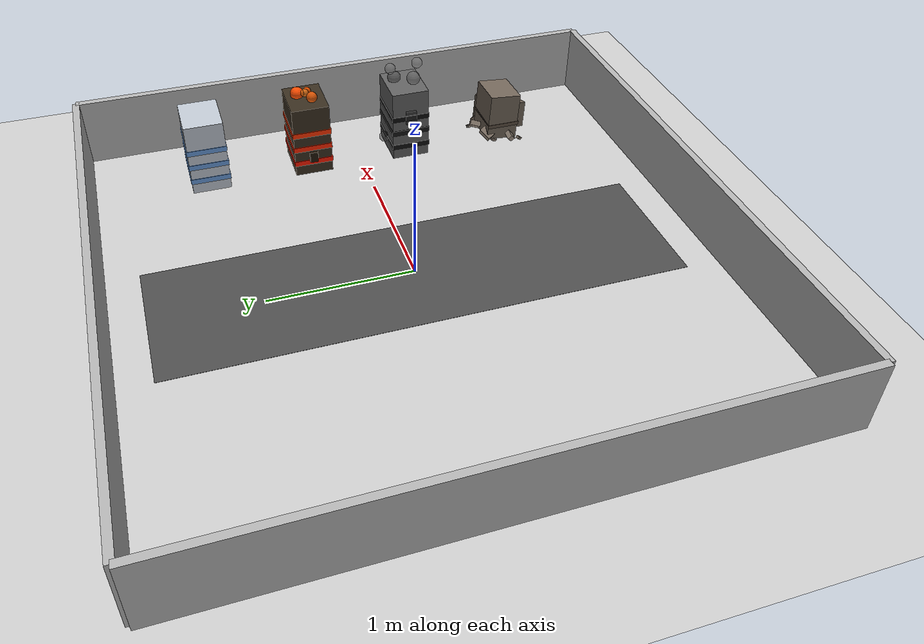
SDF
<sdf version="1.6">
 <world name="safe_city">
  <light name="sun" type="directional">
   <pose>0 0 10 0 -0 0</pose>
   <diffuse>0.8 0.8 0.8 1</diffuse>
   <specular>0.2 0.2 0.2 1</specular>
   <attenuation>
    <range>1000</range>
    <constant>0.9</constant>
    <linear>0.01</linear>
    <quadratic>0.001</quadratic>
   </attenuation>
   <direction>-0.5 0.1 -0.9</direction>
  </light>
  <include><uri>model://ground_plane</uri></include>
  <model name="field_boundary">
   <static>true</static>
   <link name="wall_north">
    <pose>0 2.0 0.25 0 0 0</pose>
    <visual name="wn_v">
     <geometry><box><size>4.0 0.05 0.5</size></box></geometry>
     <material><ambient>0.7 0.7 0.7 1.0</ambient></material>
    </visual>
    <collision name="wn_c"><geometry><box><size>4.0 0.05 0.5</size></box></geometry></collision>
   </link>
   <link name="wall_south">
    <pose>0 -2.0 0.25 0 0 0</pose>
    <visual name="ws_v">
     <geometry><box><size>4.0 0.05 0.5</size></box></geometry>
     <material><ambient>0.7 0.7 0.7 1.0</ambient></material>
    </visual>
    <collision name="ws_c"><geometry><box><size>4.0 0.05 0.5</size></box></geometry></collision>
   </link>
   <link name="wall_east">
    <pose>2.0 0 0.25 0 0 0</pose>
    <visual name="we_v">
     <geometry><box><size>0.05 4.0 0.5</size></box></geometry>
     <material><ambient>0.7 0.7 0.7 1.0</ambient></material>
    </visual>
    <collision name="we_c"><geometry><box><size>0.05 4.0 0.5</size></box></geometry></collision>
   </link>
   <link name="wall_west">
    <pose>-2.0 0 0.25 0 0 0</pose>
    <visual name="ww_v">
     <geometry><box><size>0.05 4.0 0.5</size></box></geometry>
     <material><ambient>0.7 0.7 0.7 1.0</ambient></material>
    </visual>
    <collision name="ww_c"><geometry><box><size>0.05 4.0 0.5</size></box></geometry></collision>
   </link>
  </model>
  <model name="ground_markings">
   <static>true</static>
   <link name="road_center">
    <pose>0 0 0.001 0 0 0</pose>
    <visual name="rc_v">
     <geometry><box><size>1.0 3.5 0.002</size></box></geometry>
     <material><ambient>0.3 0.3 0.3 1.0</ambient></material>
    </visual>
   </link>
  </model>
  <include>
   <name>building_normal</name>
   <pose>1.5  1.15 0 0 0 0</pose>
   <uri>model://building_normal</uri>
  </include>
  <include><name>building_fire</name><pose>1.5  0.38 0 0 0 0</pose><uri>model://building_fire</uri></include>
  <include><name>building_smoke</name><pose>1.5 -0.38 0 0 0 0</pose><uri>model://building_smoke</uri></include>
  <include>
   <name>building_collapsed</name>
   <pose>1.5 -1.15 0 0 0 0</pose>
   <uri>model://building_collapsed</uri>
  </include>
  <gravity>0 0 -9.8</gravity>
  <physics name="default_physics" default="0" type="ode">
   <max_step_size>0.001</max_step_size>
   <real_time_factor>1</real_time_factor>
   <real_time_update_rate>1000</real_time_update_rate>
  </physics>
  <scene><ambient>0.4 0.4 0.4 1</ambient><background>0.7 0.7 0.7 1</background><shadows>1</shadows></scene>
 </world>
</sdf>

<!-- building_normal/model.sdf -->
<sdf version="1.6">
  <model name="building_normal">
    <static>true</static>
    <link name="body">
      <pose>0 0 0.275 0 0 0</pose>
      <visual name="body_v"><geometry><box><size>0.35 0.28 0.55</size></box></geometry>
        <material><ambient>0.75 0.78 0.82 1.0</ambient><diffuse>0.75 0.78 0.82 1.0</diffuse></material></visual>
      <collision name="body_c"><geometry><box><size>0.35 0.28 0.55</size></box></geometry></collision>
    </link>
    <link name="win0"><pose>0 0 0.10 0 0 0</pose>
      <visual name="win0_v"><geometry><box><size>0.36 0.29 0.04</size></box></geometry>
        <material><ambient>0.4 0.6 0.85 1.0</ambient><diffuse>0.4 0.6 0.85 1.0</diffuse></material></visual>
    </link>
    <joint name="w0_j" type="fixed"><parent>body</parent><child>win0</child></joint>
    <link name="win1"><pose>0 0 0.22 0 0 0</pose>
      <visual name="win1_v"><geometry><box><size>0.36 0.29 0.04</size></box></geometry>
        <material><ambient>0.4 0.6 0.85 1.0</ambient><diffuse>0.4 0.6 0.85 1.0</diffuse></material></visual>
    </link>
    <joint name="w1_j" type="fixed"><parent>body</parent><child>win1</child></joint>
    <link name="win2"><pose>0 0 0.34 0 0 0</pose>
      <visual name="win2_v"><geometry><box><size>0.36 0.29 0.04</size></box></geometry>
        <material><ambient>0.4 0.6 0.85 1.0</ambient><diffuse>0.4 0.6 0.85 1.0</diffuse></material></visual>
    </link>
    <joint name="w2_j" type="fixed"><parent>body</parent><child>win2</child></joint>
  </model>
</sdf>

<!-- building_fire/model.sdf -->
<sdf version="1.6">
  <model name="building_fire">
    <static>true</static>

    <link name="body">
      <pose>0 0 0.275 0 0 0</pose>
      <visual name="body_v"><geometry><box><size>0.35 0.28 0.55</size></box></geometry>
        <material><ambient>0.25 0.20 0.15 1.0</ambient><diffuse>0.22 0.18 0.12 1.0</diffuse></material></visual>
      <collision name="body_c"><geometry><box><size>0.35 0.28 0.55</size></box></geometry></collision>
    </link>

    <link name="win0"><pose>0 0 0.10 0 0 0</pose>
      <visual name="w0v"><geometry><box><size>0.36 0.29 0.04</size></box></geometry>
        <material><ambient>1.0 0.15 0.0 1.0</ambient><diffuse>1.0 0.10 0.0 1.0</diffuse></material></visual></link>
    <link name="win1"><pose>0 0 0.22 0 0 0</pose>
      <visual name="w1v"><geometry><box><size>0.36 0.29 0.04</size></box></geometry>
        <material><ambient>1.0 0.2 0.0 1.0</ambient><diffuse>1.0 0.15 0.0 1.0</diffuse></material></visual></link>
    <link name="win2"><pose>0 0 0.34 0 0 0</pose>
      <visual name="w2v"><geometry><box><size>0.36 0.29 0.04</size></box></geometry>
        <material><ambient>1.0 0.25 0.0 1.0</ambient><diffuse>1.0 0.20 0.0 1.0</diffuse></material></visual></link>

    <link name="flame0"><pose>0.04 0.05 0.57 0 0 0</pose>
      <visual name="f0v"><geometry><sphere><radius>0.05</radius></sphere></geometry>
        <material><ambient>1.0 0.3 0.0 0.9</ambient></material></visual></link>
    <link name="flame1"><pose>-0.06 -0.04 0.58 0 0 0</pose>
      <visual name="f1v"><geometry><sphere><radius>0.04</radius></sphere></geometry>
        <material><ambient>1.0 0.4 0.05 0.85</ambient></material></visual></link>
    <link name="flame2"><pose>0.0 0.0 0.59 0 0 0</pose>
      <visual name="f2v"><geometry><sphere><radius>0.03</radius></sphere></geometry>
        <material><ambient>1.0 0.5 0.1 0.8</ambient></material></visual></link>
    <link name="flame3"><pose>0.07 -0.03 0.56 0 0 0</pose>
      <visual name="f3v"><geometry><sphere><radius>0.03</radius></sphere></geometry>
        <material><ambient>1.0 0.35 0.0 0.85</ambient></material></visual></link>

    <link name="scorch1"><pose>0.18 0 0.30 0 0 0</pose>
      <visual name="sc1v"><geometry><box><size>0.04 0.08 0.10</size></box></geometry>
        <material><ambient>0.15 0.10 0.05 1.0</ambient></material></visual></link>
    <link name="scorch2"><pose>-0.18 0 0.15 0 0 0</pose>
      <visual name="sc2v"><geometry><box><size>0.04 0.06 0.08</size></box></geometry>
        <material><ambient>0.12 0.08 0.03 1.0</ambient></material></visual></link>

    <joint name="j_w0" type="fixed"><parent>body</parent><child>win0</child></joint>
    <joint name="j_w1" type="fixed"><parent>body</parent><child>win1</child></joint>
    <joint name="j_w2" type="fixed"><parent>body</parent><child>win2</child></joint>
    <joint name="j_f0" type="fixed"><parent>body</parent><child>flame0</child></joint>
    <joint name="j_f1" type="fixed"><parent>body</parent><child>flame1</child></joint>
    <joint name="j_f2" type="fixed"><parent>body</parent><child>flame2</child></joint>
    <joint name="j_f3" type="fixed"><parent>body</parent><child>flame3</child></joint>
    <joint name="j_sc1" type="fixed"><parent>body</parent><child>scorch1</child></joint>
    <joint name="j_sc2" type="fixed"><parent>body</parent><child>scorch2</child></joint>
  </model>
</sdf>

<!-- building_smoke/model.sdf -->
<sdf version="1.6">
  <model name="building_smoke">
    <static>true</static>

    <!-- 主楼体：烟灰色 -->
    <link name="body">
      <pose>0 0 0.275 0 0 0</pose>
      <visual name="body_v"><geometry><box><size>0.35 0.28 0.55</size></box></geometry>
        <material><ambient>0.40 0.40 0.40 1.0</ambient><diffuse>0.38 0.38 0.38 1.0</diffuse></material></visual>
      <collision name="body_c"><geometry><box><size>0.35 0.28 0.55</size></box></geometry></collision>
    </link>

    <!-- 窗户：浓黑 -->
    <link name="win0"><pose>0 0 0.10 0 0 0</pose>
      <visual name="w0v"><geometry><box><size>0.36 0.29 0.04</size></box></geometry>
        <material><ambient>0.08 0.08 0.08 1.0</ambient><diffuse>0.06 0.06 0.06 1.0</diffuse></material></visual>
    </link>
    <link name="win1"><pose>0 0 0.22 0 0 0</pose>
      <visual name="w1v"><geometry><box><size>0.36 0.29 0.04</size></box></geometry>
        <material><ambient>0.10 0.10 0.10 1.0</ambient><diffuse>0.08 0.08 0.08 1.0</diffuse></material></visual>
    </link>
    <link name="win2"><pose>0 0 0.34 0 0 0</pose>
      <visual name="w2v"><geometry><box><size>0.36 0.29 0.04</size></box></geometry>
        <material><ambient>0.06 0.06 0.06 1.0</ambient><diffuse>0.04 0.04 0.04 1.0</diffuse></material></visual>
    </link>

    <!-- 窗口冒出的烟团 -->
    <link name="win_smoke0"><pose>0 0.16 0.10 0 0 0</pose>
      <visual name="ws0v"><geometry><sphere><radius>0.04</radius></sphere></geometry>
        <material><ambient>0.3 0.3 0.3 0.5</ambient></material></visual></link>
    <link name="win_smoke1"><pose>0 -0.16 0.22 0 0 0</pose>
      <visual name="ws1v"><geometry><sphere><radius>0.04</radius></sphere></geometry>
        <material><ambient>0.35 0.35 0.35 0.45</ambient></material></visual></link>
    <link name="win_smoke2"><pose>0.16 0 0.34 0 0 0</pose>
      <visual name="ws2v"><geometry><sphere><radius>0.03</radius></sphere></geometry>
        <material><ambient>0.28 0.28 0.28 0.5</ambient></material></visual></link>

    <!-- 楼顶烟团 — 间距拉大，水平错开 -->
    <link name="smoke0"><pose>0.06 0.06 0.57 0 0 0</pose>
      <visual name="s0v"><geometry><sphere><radius>0.05</radius></sphere></geometry>
        <material><ambient>0.35 0.35 0.35 0.65</ambient></material></visual></link>
    <link name="smoke1"><pose>-0.08 -0.05 0.62 0 0 0</pose>
      <visual name="s1v"><geometry><sphere><radius>0.05</radius></sphere></geometry>
        <material><ambient>0.42 0.42 0.42 0.5</ambient></material></visual></link>
    <link name="smoke2"><pose>0.02 0.10 0.67 0 0 0</pose>
      <visual name="s2v"><geometry><sphere><radius>0.04</radius></sphere></geometry>
        <material><ambient>0.48 0.48 0.48 0.4</ambient></material></visual></link>
    <link name="smoke3"><pose>-0.04 -0.09 0.72 0 0 0</pose>
      <visual name="s3v"><geometry><sphere><radius>0.04</radius></sphere></geometry>
        <material><ambient>0.55 0.55 0.55 0.3</ambient></material></visual></link>

    <!-- 侧面灰渍 -->
    <link name="stain1"><pose>0.18 0 0.18 0 0 0</pose>
      <visual name="st1v"><geometry><box><size>0.04 0.10 0.08</size></box></geometry>
        <material><ambient>0.25 0.25 0.25 0.8</ambient></material></visual></link>
    <link name="stain2"><pose>-0.18 0 0.35 0 0 0</pose>
      <visual name="st2v"><geometry><box><size>0.04 0.08 0.10</size></box></geometry>
        <material><ambient>0.22 0.22 0.22 0.7</ambient></material></visual></link>

    <joint name="j_w0" type="fixed"><parent>body</parent><child>win0</child></joint>
    <joint name="j_w1" type="fixed"><parent>body</parent><child>win1</child></joint>
    <joint name="j_w2" type="fixed"><parent>body</parent><child>win2</child></joint>
    <joint name="j_ws0" type="fixed"><parent>body</parent><child>win_smoke0</child></joint>
    <joint name="j_ws1" type="fixed"><parent>body</parent><child>win_smoke1</child></joint>
    <joint name="j_ws2" type="fixed"><parent>body</parent><child>win_smoke2</child></joint>
    <joint name="j_s0" type="fixed"><parent>body</parent><child>smoke0</child></joint>
    <joint name="j_s1" type="fixed"><parent>body</parent><child>smoke1</child></joint>
    <joint name="j_s2" type="fixed"><parent>body</parent><child>smoke2</child></joint>
    <joint name="j_s3" type="fixed"><parent>body</parent><child>smoke3</child></joint>
    <joint name="j_st1" type="fixed"><parent>body</parent><child>stain1</child></joint>
    <joint name="j_st2" type="fixed"><parent>body</parent><child>stain2</child></joint>
  </model>
</sdf>

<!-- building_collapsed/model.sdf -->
<sdf version="1.6">
  <model name="building_collapsed">
    <static>true</static>

    <!-- 残留半截楼体，倾斜 -->
    <link name="stump">
      <pose>0 0 0.18 0.08 0.04 0</pose>
      <visual name="sv">
        <geometry><box><size>0.30 0.24 0.36</size></box></geometry>
        <material><ambient>0.45 0.40 0.35 1.0</ambient></material>
      </visual>
      <collision name="sc">
        <geometry><box><size>0.30 0.24 0.36</size></box></geometry>
      </collision>
    </link>

    <!-- 断裂上半段横倒在地 -->
    <link name="fallen_top">
      <pose>0.10 -0.06 0.10 -1.4 0.15 0.2</pose>
      <visual name="ftv">
        <geometry><box><size>0.28 0.20 0.30</size></box></geometry>
        <material><ambient>0.42 0.38 0.33 1.0</ambient></material>
      </visual>
      <collision name="ftc">
        <geometry><box><size>0.28 0.20 0.30</size></box></geometry>
      </collision>
    </link>

    <!-- 断裂的裂缝窗口带（碎裂效果） -->
    <link name="cracked_win">
      <pose>0 0 0.12 0 0 0</pose>
      <visual name="cwv">
        <geometry><box><size>0.31 0.25 0.03</size></box></geometry>
        <material><ambient>0.35 0.30 0.25 1.0</ambient></material>
      </visual>
    </link>

    <!-- 大碎块1 -->
    <link name="rb1"><pose>0.15 -0.10 0.06 0.6 0.4 0.3</pose>
      <visual name="rb1v"><geometry><box><size>0.12 0.08 0.06</size></box></geometry>
        <material><ambient>0.50 0.45 0.40 1.0</ambient></material></visual></link>
    <!-- 大碎块2 -->
    <link name="rb2"><pose>-0.12 0.12 0.05 -0.4 -0.5 0.6</pose>
      <visual name="rb2v"><geometry><box><size>0.10 0.07 0.05</size></box></geometry>
        <material><ambient>0.48 0.43 0.38 1.0</ambient></material></visual></link>
    <!-- 大碎块3 -->
    <link name="rb3"><pose>0.05 0.16 0.04 0.3 0.7 -0.2</pose>
      <visual name="rb3v"><geometry><box><size>0.09 0.08 0.04</size></box></geometry>
        <material><ambient>0.52 0.47 0.42 1.0</ambient></material></visual></link>
    <!-- 碎块4 -->
    <link name="r4"><pose>-0.18 -0.05 0.03 0.8 -0.3 0.1</pose>
      <visual name="r4v"><geometry><box><size>0.07 0.05 0.04</size></box></geometry>
        <material><ambient>0.55 0.50 0.45 1.0</ambient></material></visual></link>
    <!-- 碎块5 -->
    <link name="r5"><pose>0.20 0.05 0.03 -0.5 0.2 -0.4</pose>
      <visual name="r5v"><geometry><box><size>0.06 0.06 0.03</size></box></geometry>
        <material><ambient>0.47 0.42 0.38 1.0</ambient></material></visual></link>

    <!-- 地面小碎片 -->
    <link name="d1"><pose>0.22 -0.02 0.01 0 0 0</pose>
      <visual name="d1v"><geometry><box><size>0.04 0.03 0.02</size></box></geometry>
        <material><ambient>0.50 0.45 0.40 1.0</ambient></material></visual></link>
    <link name="d2"><pose>-0.16 0.08 0.01 0.4 0 0</pose>
      <visual name="d2v"><geometry><box><size>0.03 0.04 0.02</size></box></geometry>
        <material><ambient>0.53 0.48 0.43 1.0</ambient></material></visual></link>
    <link name="d3"><pose>0.08 0.20 0.01 0 0.5 0</pose>
      <visual name="d3v"><geometry><box><size>0.05 0.03 0.02</size></box></geometry>
        <material><ambient>0.48 0.44 0.40 1.0</ambient></material></visual></link>
    <link name="d4"><pose>-0.20 -0.12 0.01 0.6 0 0.3</pose>
      <visual name="d4v"><geometry><box><size>0.03 0.03 0.02</size></box></geometry>
        <material><ambient>0.51 0.46 0.41 1.0</ambient></material></visual></link>
    <link name="d5"><pose>0.14 -0.15 0.02 0 0 0.7</pose>
      <visual name="d5v"><geometry><box><size>0.04 0.04 0.02</size></box></geometry>
        <material><ambient>0.49 0.44 0.39 1.0</ambient></material></visual></link>

    <!-- 斜插的断柱 -->
    <link name="pillar">
      <pose>-0.10 -0.08 0.08 0.3 0.0 0.8</pose>
      <visual name="pv"><geometry><box><size>0.04 0.04 0.25</size></box></geometry>
        <material><ambient>0.60 0.55 0.50 1.0</ambient></material></visual>
    </link>

    <!-- 扭曲的钢筋/梁 -->
    <link name="beam">
      <pose>0.12 0.10 0.07 -0.2 0.8 0.5</pose>
      <visual name="bv"><geometry><box><size>0.20 0.03 0.03</size></box></geometry>
        <material><ambient>0.40 0.35 0.30 1.0</ambient></material></visual>
    </link>

    <joint name="j_ft" type="fixed"><parent>stump</parent><child>fallen_top</child></joint>
    <joint name="j_cw" type="fixed"><parent>stump</parent><child>cracked_win</child></joint>
    <joint name="j_r1" type="fixed"><parent>stump</parent><child>rb1</child></joint>
    <joint name="j_r2" type="fixed"><parent>stump</parent><child>rb2</child></joint>
    <joint name="j_r3" type="fixed"><parent>stump</parent><child>rb3</child></joint>
    <joint name="j_r4" type="fixed"><parent>stump</parent><child>r4</child></joint>
    <joint name="j_r5" type="fixed"><parent>stump</parent><child>r5</child></joint>
    <joint name="j_d1" type="fixed"><parent>stump</parent><child>d1</child></joint>
    <joint name="j_d2" type="fixed"><parent>stump</parent><child>d2</child></joint>
    <joint name="j_d3" type="fixed"><parent>stump</parent><child>d3</child></joint>
    <joint name="j_d4" type="fixed"><parent>stump</parent><child>d4</child></joint>
    <joint name="j_d5" type="fixed"><parent>stump</parent><child>d5</child></joint>
    <joint name="j_p" type="fixed"><parent>stump</parent><child>pillar</child></joint>
    <joint name="j_b" type="fixed"><parent>stump</parent><child>beam</child></joint>
  </model>
</sdf>
